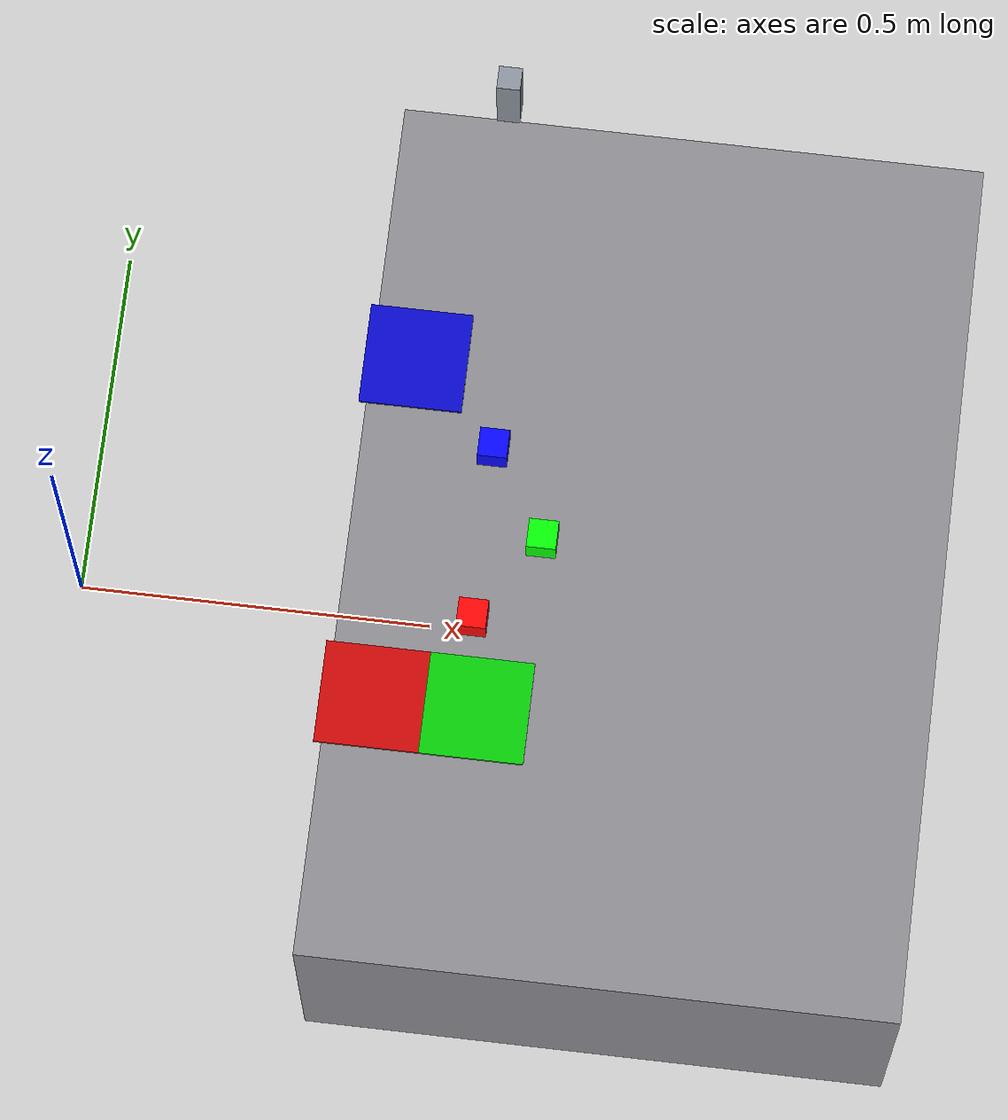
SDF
<?xml version="1.0"?>
<sdf version="1.6">
  <world name="aubo_color_sorting">
    <!-- Contact-assisted grasping for small blocks. -->
    <plugin name="aubo_grasp_attach"
            filename="libaubo_grasp_attach_plugin.so">
      <robot_model>aubo_mobile_robot</robot_model>
      <!-- wrist3_Link is guaranteed to survive URDF fixed-joint lumping; the
           fixed gripper base has the same pose in this model. -->
      <palm_link>wrist3_Link</palm_link>
      <object_link>block_link</object_link>
      <max_attach_distance>0.18</max_attach_distance>
      <attach_topic>/sorting/grasp/attach</attach_topic>
      <detach_topic>/sorting/grasp/detach</detach_topic>
      <status_topic>/sorting/grasp/status</status_topic>
      <!-- Gazebo collapses the fixed mobile_base_joint, so base_footprint is
           the canonical chassis rigid body exposed by Model::GetLink(). -->
      <base_link>base_footprint</base_link>
    </plugin>
    <include><uri>model://ground_plane</uri></include>
    <include><uri>model://sun</uri></include>

    <!-- Scene-owned overhead RGB-D camera.  It is 1.53 m above the blocks,
         has no chassis mast, and sits beyond the arm's vertical reach. -->
    <model name="workspace_camera">
      <static>true</static>
      <pose>0.62 0 2.00 0 1.57079632679 0</pose>
      <link name="workspace_camera_link">
        <collision name="camera_body_collision">
          <geometry><box><size>0.090 0.025 0.025</size></box></geometry>
        </collision>
        <visual name="camera_body_visual">
          <geometry><box><size>0.090 0.025 0.025</size></box></geometry>
          <material><ambient>0.55 0.58 0.62 1</ambient><diffuse>0.55 0.58 0.62 1</diffuse></material>
        </visual>
        <sensor type="depth" name="workspace_camera_rgbd">
          <pose>0.045 0 0 0 0 0</pose>
          <always_on>true</always_on>
          <visualize>false</visualize>
          <update_rate>15</update_rate>
          <camera name="workspace_camera_sensor">
            <horizontal_fov>1.308996939</horizontal_fov>
            <image><width>640</width><height>480</height><format>R8G8B8</format></image>
            <clip><near>0.15</near><far>3.0</far></clip>
          </camera>
          <plugin name="workspace_camera_gazebo_ros_openni" filename="libgazebo_ros_openni_kinect.so">
            <cameraName>workspace_camera</cameraName>
            <imageTopicName>color/image_raw</imageTopicName>
            <cameraInfoTopicName>color/camera_info</cameraInfoTopicName>
            <depthImageTopicName>aligned_depth_to_color/image_raw</depthImageTopicName>
            <depthImageCameraInfoTopicName>aligned_depth_to_color/camera_info</depthImageCameraInfoTopicName>
            <pointCloudTopicName>depth/color/points</pointCloudTopicName>
            <frameName>workspace_camera_color_optical_frame</frameName>
            <pointCloudCutoff>0.15</pointCloudCutoff>
            <pointCloudCutoffMax>3.0</pointCloudCutoffMax>
          </plugin>
        </sensor>
      </link>
    </model>

    <model name="sorting_table">
      <static>true</static>
      <pose>0.80 0 0.25 0 0 0</pose>
      <link name="table_link">
        <collision name="collision">
          <geometry><box><size>0.80 1.20 0.40</size></box></geometry>
        </collision>
        <visual name="visual">
          <geometry><box><size>0.80 1.20 0.40</size></box></geometry>
          <material>
            <ambient>0.45 0.45 0.47 1</ambient>
            <diffuse>0.55 0.55 0.57 1</diffuse>
          </material>
        </visual>
      </link>
    </model>

    <!-- Visual-only sorting pads: blocks still rest on the common table plane. -->
    <model name="red_pad">
      <static>true</static><pose>0.46 -0.24 0.452 0 0 0</pose>
      <link name="link"><visual name="visual"><geometry><box><size>0.14 0.14 0.004</size></box></geometry>
        <material><ambient>0.45 0.02 0.02 1</ambient><diffuse>0.8 0.03 0.03 1</diffuse></material>
      </visual></link>
    </model>
    <model name="green_pad">
      <static>true</static><pose>0.60 -0.24 0.452 0 0 0</pose>
      <link name="link"><visual name="visual"><geometry><box><size>0.14 0.14 0.004</size></box></geometry>
        <material><ambient>0.02 0.40 0.02 1</ambient><diffuse>0.03 0.8 0.03 1</diffuse></material>
      </visual></link>
    </model>
    <model name="blue_pad">
      <static>true</static><pose>0.46 0.24 0.452 0 0 0</pose>
      <link name="link"><visual name="visual"><geometry><box><size>0.14 0.14 0.004</size></box></geometry>
        <material><ambient>0.02 0.02 0.45 1</ambient><diffuse>0.03 0.03 0.8 1</diffuse></material>
      </visual></link>
    </model>

    <model name="red_block">
      <pose>0.58 -0.12 0.470 0 0 0</pose>
      <link name="block_link">
        <gravity>true</gravity>
        <kinematic>false</kinematic>
        <inertial><mass>0.04</mass><inertia><ixx>0.000011</ixx><iyy>0.000011</iyy><izz>0.000011</izz></inertia></inertial>
        <collision name="collision">
          <max_contacts>20</max_contacts>
          <geometry><box><size>0.04 0.04 0.04</size></box></geometry>
          <surface>
            <friction><ode><mu>20.0</mu><mu2>20.0</mu2></ode></friction>
            <contact><ode><kp>1000000</kp><kd>100</kd><max_vel>0.01</max_vel><min_depth>0.001</min_depth></ode></contact>
          </surface>
        </collision>
        <visual name="visual"><geometry><box><size>0.04 0.04 0.04</size></box></geometry>
          <material><ambient>0.8 0.02 0.02 1</ambient><diffuse>1 0.02 0.02 1</diffuse></material>
        </visual>
      </link>
    </model>

    <model name="green_block">
      <pose>0.66 0 0.470 0 0 0</pose>
      <link name="block_link">
        <gravity>true</gravity>
        <kinematic>false</kinematic>
        <inertial><mass>0.04</mass><inertia><ixx>0.000011</ixx><iyy>0.000011</iyy><izz>0.000011</izz></inertia></inertial>
        <collision name="collision">
          <max_contacts>20</max_contacts>
          <geometry><box><size>0.04 0.04 0.04</size></box></geometry>
          <surface>
            <friction><ode><mu>20.0</mu><mu2>20.0</mu2></ode></friction>
            <contact><ode><kp>1000000</kp><kd>100</kd><max_vel>0.01</max_vel><min_depth>0.001</min_depth></ode></contact>
          </surface>
        </collision>
        <visual name="visual"><geometry><box><size>0.04 0.04 0.04</size></box></geometry>
          <material><ambient>0.02 0.8 0.02 1</ambient><diffuse>0.02 1 0.02 1</diffuse></material>
        </visual>
      </link>
    </model>

    <model name="blue_block">
      <pose>0.58 0.12 0.470 0 0 0</pose>
      <link name="block_link">
        <gravity>true</gravity>
        <kinematic>false</kinematic>
        <inertial><mass>0.04</mass><inertia><ixx>0.000011</ixx><iyy>0.000011</iyy><izz>0.000011</izz></inertia></inertial>
        <collision name="collision">
          <max_contacts>20</max_contacts>
          <geometry><box><size>0.04 0.04 0.04</size></box></geometry>
          <surface>
            <friction><ode><mu>20.0</mu><mu2>20.0</mu2></ode></friction>
            <contact><ode><kp>1000000</kp><kd>100</kd><max_vel>0.01</max_vel><min_depth>0.001</min_depth></ode></contact>
          </surface>
        </collision>
        <visual name="visual"><geometry><box><size>0.04 0.04 0.04</size></box></geometry>
          <material><ambient>0.02 0.02 0.8 1</ambient><diffuse>0.02 0.02 1 1</diffuse></material>
        </visual>
      </link>
    </model>

    <physics name="sorting_physics" type="ode">
      <max_step_size>0.001</max_step_size>
      <real_time_update_rate>1000</real_time_update_rate>
      <ode><solver><type>quick</type><iters>150</iters><sor>1.3</sor></solver></ode>
    </physics>
  </world>
</sdf>
